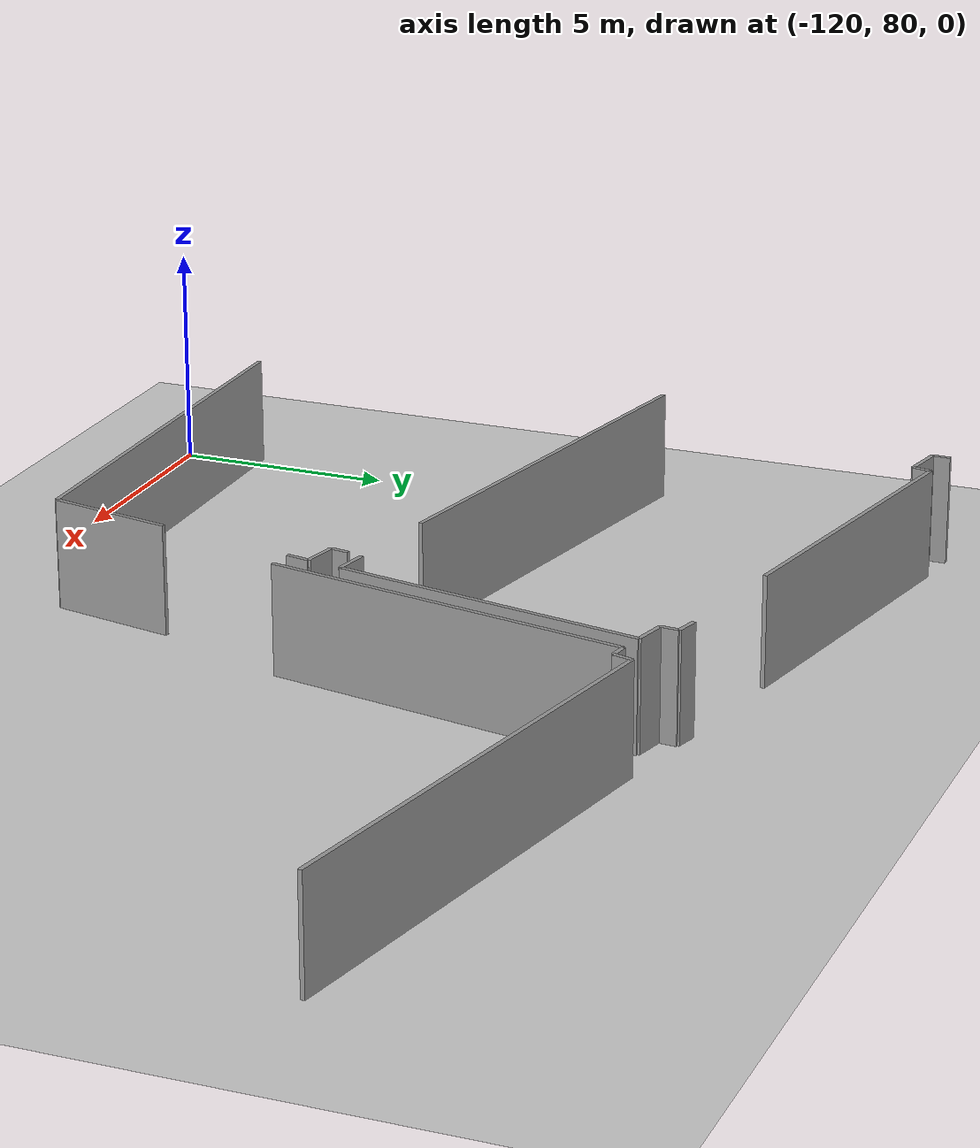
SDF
<sdf version="1.6">
 <world name="default">
  <model name="ground_plane">
   <static>1</static>
   <link name="link">
    <collision name="collision">
     <geometry><plane><normal>0 0 1</normal><size>100 100</size></plane></geometry>
     <surface><friction><ode><mu>100</mu><mu2>50</mu2></ode></friction></surface>
    </collision>
    <visual name="visual">
     <cast_shadows>0</cast_shadows>
     <geometry><plane><normal>0 0 1</normal><size>100 100</size></plane></geometry>
     <material>
      <script><uri>file://media/materials/scripts/gazebo.material</uri><name>Gazebo/Grey</name></script>
     </material>
    </visual>
   </link>
  </model>
  <model name="0510045925_40">
   <static>1</static>
   <link name="Wall_331">
    <collision name="Wall_331_Collision">
     <geometry><box><size>0.416799365609 0.1 2.5</size></box></geometry>
     <pose>0.208399682805 0 1.25 0 0 0</pose>
    </collision>
    <visual name="Wall_331_Visual">
     <pose>0.208399682805 0 1.25 0 0 0</pose>
     <geometry><box><size>0.416799365609 0.1 2.5</size></box></geometry>
     <material>
      <script><uri>file://media/materials/scripts/gazebo.material</uri><name>Gazebo/Grey</name></script>
      <ambient>1 1 1 1</ambient>
     </material>
    </visual>
    <pose>14.1621278648 -2.12004771453 0 0 0 -1.60063821146</pose>
   </link>
   <link name="Wall_332">
    <collision name="Wall_332_Collision">
     <geometry><box><size>0.937758013893 0.1 2.5</size></box></geometry>
     <pose>0.468879006947 0 1.25 0 0 0</pose>
    </collision>
    <visual name="Wall_332_Visual">
     <pose>0.468879006947 0 1.25 0 0 0</pose>
     <geometry><box><size>0.937758013893 0.1 2.5</size></box></geometry>
     <material>
      <script><uri>file://media/materials/scripts/gazebo.material</uri><name>Gazebo/Grey</name></script>
      <ambient>1 1 1 1</ambient>
     </material>
    </visual>
    <pose>14.1496916322 -2.53666150605 0 0 0 -0.194768191306</pose>
   </link>
   <link name="Wall_333">
    <collision name="Wall_333_Collision">
     <geometry><box><size>0.423884058142 0.1 2.5</size></box></geometry>
     <pose>0.211942029071 0 1.25 0 0 0</pose>
    </collision>
    <visual name="Wall_333_Visual">
     <pose>0.211942029071 0 1.25 0 0 0</pose>
     <geometry><box><size>0.423884058142 0.1 2.5</size></box></geometry>
     <material>
      <script><uri>file://media/materials/scripts/gazebo.material</uri><name>Gazebo/Grey</name></script>
      <ambient>1 1 1 1</ambient>
     </material>
    </visual>
    <pose>15.0697190427 -2.71815436156 0 0 0 1.38531964354</pose>
   </link>
   <link name="Wall_334">
    <collision name="Wall_334_Collision">
     <geometry><box><size>7.5165100401 0.1 2.5</size></box></geometry>
     <pose>3.75825502005 0 1.25 0 0 0</pose>
    </collision>
    <visual name="Wall_334_Visual">
     <pose>3.75825502005 0 1.25 0 0 0</pose>
     <geometry><box><size>7.5165100401 0.1 2.5</size></box></geometry>
     <material>
      <script><uri>file://media/materials/scripts/gazebo.material</uri><name>Gazebo/Grey</name></script>
      <ambient>1 1 1 1</ambient>
     </material>
    </visual>
    <pose>15.1478896475 -2.30154057004 0 0 0 -0.191041698393</pose>
   </link>
   <link name="Wall_335">
    <collision name="Wall_335_Collision">
     <geometry><box><size>0.518746375354 0.1 2.5</size></box></geometry>
     <pose>0.259373187677 0 1.25 0 0 0</pose>
    </collision>
    <visual name="Wall_335_Visual">
     <pose>0.259373187677 0 1.25 0 0 0</pose>
     <geometry><box><size>0.518746375354 0.1 2.5</size></box></geometry>
     <material>
      <script><uri>file://media/materials/scripts/gazebo.material</uri><name>Gazebo/Grey</name></script>
      <ambient>1 1 1 1</ambient>
     </material>
    </visual>
    <pose>25.4443288241 -4.26029796198 0 0 0 -0.256584108816</pose>
   </link>
   <link name="Wall_336">
    <collision name="Wall_336_Collision">
     <geometry><box><size>0.415902399275 0.1 2.5</size></box></geometry>
     <pose>0.207951199638 0 1.25 0 0 0</pose>
    </collision>
    <visual name="Wall_336_Visual">
     <pose>0.207951199638 0 1.25 0 0 0</pose>
     <geometry><box><size>0.415902399275 0.1 2.5</size></box></geometry>
     <material>
      <script><uri>file://media/materials/scripts/gazebo.material</uri><name>Gazebo/Grey</name></script>
      <ambient>1 1 1 1</ambient>
     </material>
    </visual>
    <pose>25.9460927388 -4.39194436689 0 0 0 -1.66123521952</pose>
   </link>
   <link name="Wall_337">
    <collision name="Wall_337_Collision">
     <geometry><box><size>0.76681178422 0.1 2.5</size></box></geometry>
     <pose>0.38340589211 0 1.25 0 0 0</pose>
    </collision>
    <visual name="Wall_337_Visual">
     <pose>0.38340589211 0 1.25 0 0 0</pose>
     <geometry><box><size>0.76681178422 0.1 2.5</size></box></geometry>
     <material>
      <script><uri>file://media/materials/scripts/gazebo.material</uri><name>Gazebo/Grey</name></script>
      <ambient>1 1 1 1</ambient>
     </material>
    </visual>
    <pose>25.9085302403 -4.80614705211 0 0 0 -0.231090667196</pose>
   </link>
   <link name="Wall_338">
    <collision name="Wall_338_Collision">
     <geometry><box><size>7.12396081635 0.1 2.5</size></box></geometry>
     <pose>3.56198040818 0 1.25 0 0 0</pose>
    </collision>
    <visual name="Wall_338_Visual">
     <pose>3.56198040818 0 1.25 0 0 0</pose>
     <geometry><box><size>7.12396081635 0.1 2.5</size></box></geometry>
     <material>
      <script><uri>file://media/materials/scripts/gazebo.material</uri><name>Gazebo/Grey</name></script>
      <ambient>1 1 1 1</ambient>
     </material>
    </visual>
    <pose>26.654957996 -4.98177711226 0 0 0 -1.75984943066</pose>
   </link>
   <link name="Wall_339">
    <collision name="Wall_339_Collision">
     <geometry><box><size>0.771983442899 0.1 2.5</size></box></geometry>
     <pose>0.385991721449 0 1.25 0 0 0</pose>
    </collision>
    <visual name="Wall_339_Visual">
     <pose>0.385991721449 0 1.25 0 0 0</pose>
     <geometry><box><size>0.771983442899 0.1 2.5</size></box></geometry>
     <material>
      <script><uri>file://media/materials/scripts/gazebo.material</uri><name>Gazebo/Grey</name></script>
      <ambient>1 1 1 1</ambient>
     </material>
    </visual>
    <pose>25.3161594883 -11.9788076445 0 0 0 2.95876918576</pose>
   </link>
   <link name="Wall_340">
    <collision name="Wall_340_Collision">
     <geometry><box><size>10.1360877931 0.1 2.5</size></box></geometry>
     <pose>5.06804389657 0 1.25 0 0 0</pose>
    </collision>
    <visual name="Wall_340_Visual">
     <pose>5.06804389657 0 1.25 0 0 0</pose>
     <geometry><box><size>10.1360877931 0.1 2.5</size></box></geometry>
     <material>
      <script><uri>file://media/materials/scripts/gazebo.material</uri><name>Gazebo/Grey</name></script>
      <ambient>1 1 1 1</ambient>
     </material>
    </visual>
    <pose>22.3296870638 -11.460292886 0 0 0 2.94811086237</pose>
   </link>
   <link name="Wall_351">
    <collision name="Wall_351_Collision">
     <geometry><box><size>0.433105313268 0.1 2.5</size></box></geometry>
     <pose>0.216552656634 0 1.25 0 0 0</pose>
    </collision>
    <visual name="Wall_351_Visual">
     <pose>0.216552656634 0 1.25 0 0 0</pose>
     <geometry><box><size>0.433105313268 0.1 2.5</size></box></geometry>
     <material>
      <script><uri>file://media/materials/scripts/gazebo.material</uri><name>Gazebo/Grey</name></script>
      <ambient>1 1 1 1</ambient>
     </material>
    </visual>
    <pose>24.4534910281 -12.1866703891 0 0 0 -1.74037657443</pose>
   </link>
   <link name="Wall_352">
    <collision name="Wall_352_Collision">
     <geometry><box><size>0.79938950442 0.1 2.5</size></box></geometry>
     <pose>0.39969475221 0 1.25 0 0 0</pose>
    </collision>
    <visual name="Wall_352_Visual">
     <pose>0.39969475221 0 1.25 0 0 0</pose>
     <geometry><box><size>0.79938950442 0.1 2.5</size></box></geometry>
     <material>
      <script><uri>file://media/materials/scripts/gazebo.material</uri><name>Gazebo/Grey</name></script>
      <ambient>1 1 1 1</ambient>
     </material>
    </visual>
    <pose>24.3803964366 -12.6135631075 0 0 0 -0.202999486243</pose>
   </link>
   <link name="Wall_353">
    <collision name="Wall_353_Collision">
     <geometry><box><size>0.52912441517 0.1 2.5</size></box></geometry>
     <pose>0.264562207585 0 1.25 0 0 0</pose>
    </collision>
    <visual name="Wall_353_Visual">
     <pose>0.264562207585 0 1.25 0 0 0</pose>
     <geometry><box><size>0.52912441517 0.1 2.5</size></box></geometry>
     <material>
      <script><uri>file://media/materials/scripts/gazebo.material</uri><name>Gazebo/Grey</name></script>
      <ambient>1 1 1 1</ambient>
     </material>
    </visual>
    <pose>25.163371488 -12.7747265298 0 0 0 -1.75897295685</pose>
   </link>
   <link name="Wall_354">
    <collision name="Wall_354_Collision">
     <geometry><box><size>2.90908555266 0.1 2.5</size></box></geometry>
     <pose>1.45454277633 0 1.25 0 0 0</pose>
    </collision>
    <visual name="Wall_354_Visual">
     <pose>1.45454277633 0 1.25 0 0 0</pose>
     <geometry><box><size>2.90908555266 0.1 2.5</size></box></geometry>
     <material>
      <script><uri>file://media/materials/scripts/gazebo.material</uri><name>Gazebo/Grey</name></script>
      <ambient>1 1 1 1</ambient>
     </material>
    </visual>
    <pose>24.4674500647 -16.4578817797 0 0 0 -1.77193898178</pose>
   </link>
   <link name="Wall_355">
    <collision name="Wall_355_Collision">
     <geometry><box><size>10.2898877133 0.1 2.5</size></box></geometry>
     <pose>5.14494385666 0 1.25 0 0 0</pose>
    </collision>
    <visual name="Wall_355_Visual">
     <pose>5.14494385666 0 1.25 0 0 0</pose>
     <geometry><box><size>10.2898877133 0.1 2.5</size></box></geometry>
     <material>
      <script><uri>file://media/materials/scripts/gazebo.material</uri><name>Gazebo/Grey</name></script>
      <ambient>1 1 1 1</ambient>
     </material>
    </visual>
    <pose>23.886246542 -19.3083170478 0 0 0 -3.13855884695</pose>
   </link>
   <link name="Wall_364">
    <collision name="Wall_364_Collision">
     <geometry><box><size>0.394903395434 0.1 2.5</size></box></geometry>
     <pose>0.197451697717 0 1.25 0 0 0</pose>
    </collision>
    <visual name="Wall_364_Visual">
     <pose>0.197451697717 0 1.25 0 0 0</pose>
     <geometry><box><size>0.394903395434 0.1 2.5</size></box></geometry>
     <material>
      <script><uri>file://media/materials/scripts/gazebo.material</uri><name>Gazebo/Grey</name></script>
      <ambient>1 1 1 1</ambient>
     </material>
    </visual>
    <pose>27.2072282429 -5.10106342479 0 0 0 -0.175714640924</pose>
   </link>
   <link name="Wall_365">
    <collision name="Wall_365_Collision">
     <geometry><box><size>0.443001117982 0.1 2.5</size></box></geometry>
     <pose>0.221500558991 0 1.25 0 0 0</pose>
    </collision>
    <visual name="Wall_365_Visual">
     <pose>0.221500558991 0 1.25 0 0 0</pose>
     <geometry><box><size>0.443001117982 0.1 2.5</size></box></geometry>
     <material>
      <script><uri>file://media/materials/scripts/gazebo.material</uri><name>Gazebo/Grey</name></script>
      <ambient>1 1 1 1</ambient>
     </material>
    </visual>
    <pose>27.5960508617 -5.17009720565 0 0 0 1.29816277541</pose>
   </link>
   <link name="Wall_366">
    <collision name="Wall_366_Collision">
     <geometry><box><size>11.0122784121 0.1 2.5</size></box></geometry>
     <pose>5.50613920606 0 1.25 0 0 0</pose>
    </collision>
    <visual name="Wall_366_Visual">
     <pose>5.50613920606 0 1.25 0 0 0</pose>
     <geometry><box><size>11.0122784121 0.1 2.5</size></box></geometry>
     <material>
      <script><uri>file://media/materials/scripts/gazebo.material</uri><name>Gazebo/Grey</name></script>
      <ambient>1 1 1 1</ambient>
     </material>
    </visual>
    <pose>27.7153371742 -4.74345828786 0 0 0 -0.191537734971</pose>
   </link>
   <link name="Wall_508">
    <collision name="Wall_508_Collision">
     <geometry><box><size>8.43029860843 0.1 2.5</size></box></geometry>
     <pose>4.21514930422 0 1.25 0 0 0</pose>
    </collision>
    <visual name="Wall_508_Visual">
     <pose>4.21514930422 0 1.25 0 0 0</pose>
     <geometry><box><size>8.43029860843 0.1 2.5</size></box></geometry>
     <material>
      <script><uri>file://media/materials/scripts/gazebo.material</uri><name>Gazebo/Grey</name></script>
      <ambient>1 1 1 1</ambient>
     </material>
    </visual>
    <pose>25.6184360803 -13.3802949164 0 0 0 1.38120033128</pose>
   </link>
   <pose>-133.95 101.083118449 0 0 0 0</pose>
  </model>
 </world>
</sdf>
